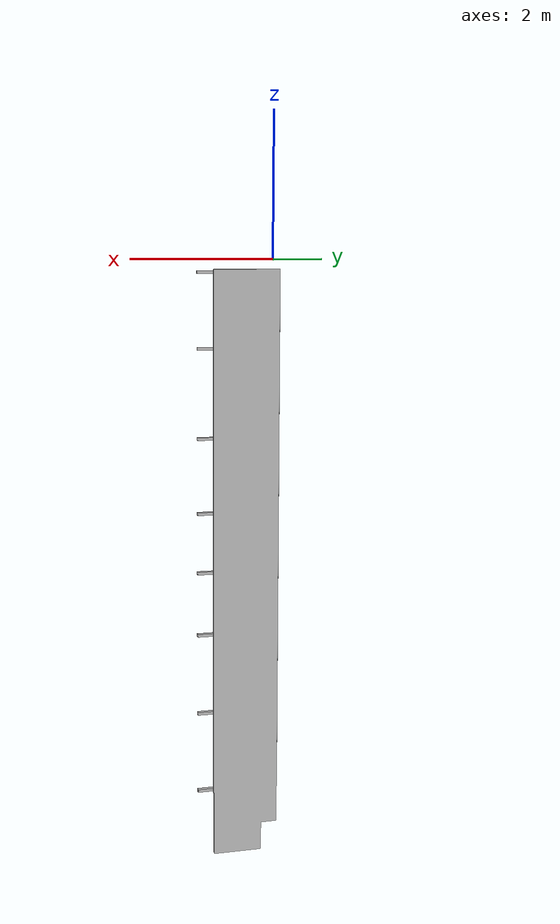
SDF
<?xml version="1.0" ?>
<sdf version="1.6">
  <model name="sidelong_table_left">
    <pose>0 0 0 0 0 0</pose>
    <static>true</static>
    <link name="body">
      <visual name="visual">
        <geometry>
          <mesh><uri>model://sidelong_table_left/meshes/sidelong_table_left.dae</uri></mesh>
        </geometry>
      </visual>
      <collision name="collision">
        <geometry>
	  <mesh><uri>model://sidelong_table_left/meshes/sidelong_table_left.dae</uri></mesh>
        </geometry>
      </collision>
    </link>
  </model>
</sdf>
